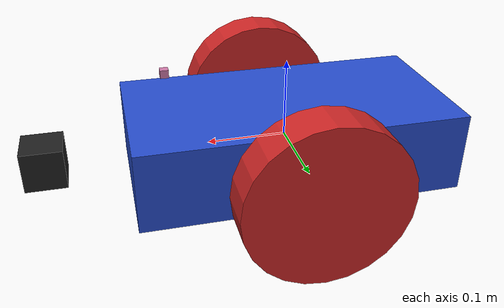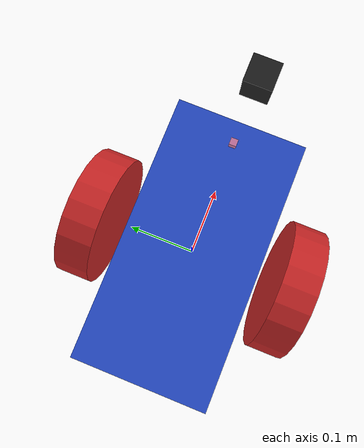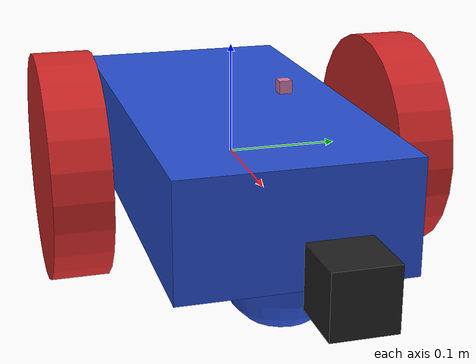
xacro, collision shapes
<?xml version='1.0'?>
<robot name="slam_bot" xmlns:xacro="http://www.ros.org/wiki/xacro">
<xacro:include filename="$(find slam_project)/urdf/slam_bot.gazebo" />

  <link name="robot_footprint"></link>

  <joint name="robot_footprint_joint" type="fixed">
    <origin xyz="0 0 0" rpy="0 0 0" />
    <parent link="robot_footprint"/>
    <child link="chassis" />
  </joint>

  <link name='chassis'>
    <pose>0 0 0.1 0 0 0</pose>
    <inertial>
      <mass value="15.0"/>
      <origin xyz="0.0 0 0" rpy=" 0 0 0"/>
      <inertia ixx="0.1" ixy="0" ixz="0" iyy="0.1" iyz="0" izz="0.1" />
    </inertial>

    <collision name='collision'>
      <origin xyz="0 0 0" rpy=" 0 0 0"/>
      <geometry>
        <box size=".4 .2 .1"/>
      </geometry>
    </collision>

    <visual name='chassis_visual'>
      <origin xyz="0 0 0" rpy=" 0 0 0"/>
      <geometry>
        <box size=".4 .2 .1"/>
      </geometry>
    </visual>

    <collision name='back_caster_collision'>
      <origin xyz="-0.15 0 -0.05" rpy=" 0 0 0"/>
      <geometry>
        <sphere radius="0.0499"/>
      </geometry>
    </collision>

    <visual name='back_caster_visual'>
      <origin xyz="-0.15 0 -0.05" rpy=" 0 0 0"/>
      <geometry>
        <sphere radius="0.05"/>
      </geometry>
    </visual>

    <collision name='front_caster_collision'>
      <origin xyz="0.15 0 -0.05" rpy=" 0 0 0"/>
      <geometry>
        <sphere radius="0.0499"/>
      </geometry>
    </collision>

    <visual name='front_caster_visual'>
      <origin xyz="0.15 0.0 -0.05" rpy=" 0 0 0"/>
      <geometry>
        <sphere radius="0.05"/>
      </geometry>
    </visual>

  </link>

  <!-- Added wheels to the chessis -->

  <link name='left_wheel'>
    <inertial>
      <mass value="5.0"/>
      <origin xyz="0 0 0" rpy="0 1.5707 1.5707"/>
      <inertia ixx="0.1" ixy="0" ixz="0" iyy="0.1" iyz="0" izz="0.1" />
    </inertial>

    <collision name='collision'>
      <origin xyz="0 0 0" rpy="0 1.5707 1.5707"/>
      <geometry>
        <cylinder radius="0.1" length=".05"/>
      </geometry>
    </collision>

    <visual name='left_wheel_visual'>
      <origin xyz="0 0 0" rpy=" 0 1.5707 1.5707"/>
      <geometry>
        <cylinder radius="0.1" length=".05"/>
      </geometry>
    </visual>
  </link>
  <joint type="continuous" name="left_wheel_hinge">
    <origin xyz="0.0 0.15 0.0" rpy="0 0 0"/>
    <child link="left_wheel"/>
    <parent link="chassis"/>
    <axis xyz="0 1 0" rpy="0 0 0"/>
    <limit effort="10000" velocity="1000"/>
    <joint_properties damping="1.0" friction="1.0"/>
  </joint>

  <link name='right_wheel'>
    <inertial>
      <mass value="5.0"/>
      <origin xyz="0 0 0" rpy="0 1.5707 1.5707"/>
      <inertia ixx="0.1" ixy="0" ixz="0" iyy="0.1" iyz="0" izz="0.1" />
    </inertial>

    <collision name='collision'>
      <origin xyz="0 0 0" rpy="0 1.5707 1.5707"/>
      <geometry>
        <cylinder radius="0.1" length=".05"/>
      </geometry>
    </collision>

    <visual name='right_wheel_visual'>
      <origin xyz="0 0 0" rpy=" 0 1.5707 1.5707"/>
      <geometry>
        <cylinder radius="0.1" length=".05"/>
      </geometry>
    </visual>
  </link>
  <joint type="continuous" name="right_wheel_hinge">
    <origin xyz="0.0 -0.15 0.0" rpy="0 0 0"/>
    <child link="right_wheel"/>
    <parent link="chassis"/>
    <axis xyz="0 1 0" rpy="0 0 0"/>
    <limit effort="10000" velocity="1000"/>
    <joint_properties damping="1.0" friction="1.0"/>
  </joint>

  <!-- Added four wheels to the chessis -->

 <!-- Added camera to the chessis -->

  <link name="camera">
      <origin>0 0 0 0 0 0</origin>
      <inertial>
        <origin xyz="0 0 0" rpy="3.14 0 0"/>
        <mass value ="0.1"/>
        <inertia ixx="1e-6" ixy="0" ixz="0" iyy="1e-6" iyz="0" izz="1e-6"/>
      </inertial>
      <collision name="collision">
        <origin xyz="0 0 0" rpy="3.14 0 0"/>
        <geometry>
          <box size="0.05 0.05 0.05" />
        </geometry>
      </collision>
      <visual>
        <geometry>
          <mesh filename="package://slam_project/meshes/kinect/meshes/kinect.dae" />
        </geometry>
      </visual>
    </link>

    <joint type="fixed" name="camera_joint">
      <origin xyz="0.3 0 0" rpy="0 0 0" />
      <child link="camera" />
      <parent link="chassis" />
    </joint>

    <joint name="camera_optical_joint" type="fixed">
      <!-- these values have to be these values otherwise the gazebo camera
          image won't be aligned properly with the frame it is supposedly
          originating from -->
      <origin xyz="0 0 0" rpy="${-pi/2} 0 ${-pi/2}"/>
      <parent link="camera"/>
      <child link="camera_optical_link"/>
    </joint>

    <link name="camera_optical_link">
  </link>

  <!-- Added hokuyo(LIDAR) to the chessis -->

  <link name='hokuyo'>
    <inertial>
      <mass value="0.1"/>
      <origin xyz="0 0 0" rpy="0 0 0"/>
      <inertia ixx="1e-6" ixy="0" ixz="0" iyy="1e-6" iyz="0" izz="1e-6" />
    </inertial>

    <collision name='collision'>
      <origin xyz="0 0 0" rpy="0 0 0"/>
      <geometry>
        <box size="0.01 0.01 0.01"/>
      </geometry>
    </collision>

    <visual name='hokuyo_visual'>
      <geometry>
        <mesh filename="package://slam_project/meshes/hokuyo.dae" />
      </geometry>
    </visual>
  </link>
  <joint type="fixed" name="hokuyo_joint">
    <origin xyz="0.15 0 0.1" rpy="0 0 0"/>
    <child link="hokuyo"/>
    <parent link="chassis"/>
  </joint>

</robot>
